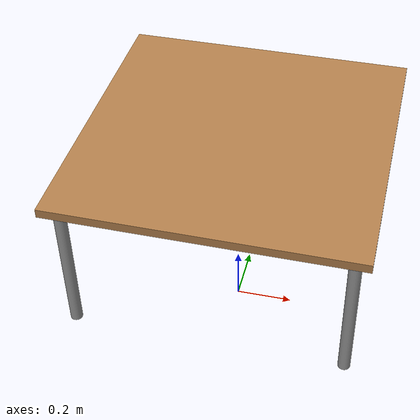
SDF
<?xml version="1.0" ?>
<sdf version="1.5">
  <model name="custom_table">
    <static>true</static>
    <link name="link">
      <collision name="surface">
        <pose>0 0 0.75 0 0 0</pose>
        <geometry>
          <box>
            <size>1.0 1.0 0.03</size>
          </box>
        </geometry>
        <surface>
          <friction>
            <ode>
              <mu>0.6</mu>
              <mu2>0.6</mu2>
            </ode>
          </friction>
        </surface>
      </collision>
      <visual name="visual1">
        <pose>0 0 0.75 0 0 0</pose>
        <geometry>
          <box>
            <size>1.0 1.0 0.03</size>
          </box>
        </geometry>
        <material>
          <script>
            <uri>file://media/materials/scripts/gazebo.material</uri>
            <name>Gazebo/Wood</name>
          </script>
        </material>
      </visual>
      <collision name="front_left_leg">
        <pose>0.45 0.45 0.5 0 0 0</pose>
        <geometry>
          <cylinder>
            <radius>0.02</radius>
            <length>0.5</length>
          </cylinder>
        </geometry>
      </collision>
      <visual name="front_left_leg">
        <pose>0.45 0.45 0.5 0 0 0</pose>
        <geometry>
          <cylinder>
            <radius>0.02</radius>
            <length>0.5</length>
          </cylinder>
        </geometry>
        <material>
          <script>
            <uri>file://media/materials/scripts/gazebo.material</uri>
            <name>Gazebo/Grey</name>
          </script>
        </material>
      </visual>
      <collision name="front_right_leg">
        <pose>0.45 -0.45 0.5 0 0 0</pose>
        <geometry>
          <cylinder>
            <radius>0.02</radius>
            <length>0.5</length>
          </cylinder>
        </geometry>
      </collision>
      <visual name="front_right_leg">
        <pose>0.45 -0.45 0.5 0 0 0</pose>
        <geometry>
          <cylinder>
            <radius>0.02</radius>
            <length>0.5</length>
          </cylinder>
        </geometry>
        <material>
          <script>
            <uri>file://media/materials/scripts/gazebo.material</uri>
            <name>Gazebo/Grey</name>
          </script>
        </material>
      </visual>
      <collision name="back_right_leg">
        <pose>-0.45 -0.45 0.5 0 0 0</pose>
        <geometry>
          <cylinder>
            <radius>0.02</radius>
            <length>0.5</length>
          </cylinder>
        </geometry>
      </collision>
      <visual name="back_right_leg">
        <pose>-0.45 -0.45 0.5 0 0 0</pose>
        <geometry>
          <cylinder>
            <radius>0.02</radius>
            <length>0.5</length>
          </cylinder>
        </geometry>
        <material>
          <script>
            <uri>file://media/materials/scripts/gazebo.material</uri>
            <name>Gazebo/Grey</name>
          </script>
        </material>
      </visual>
      <collision name="back_left_leg">
        <pose>-0.45 0.45 0.5 0 0 0</pose>
        <geometry>
          <cylinder>
            <radius>0.02</radius>
            <length>0.5</length>
          </cylinder>
        </geometry>
      </collision>
      <visual name="back_left_leg">
        <pose>-0.45 0.45 0.5 0 0 0</pose>
        <geometry>
          <cylinder>
            <radius>0.02</radius>
            <length>0.5</length>
          </cylinder>
        </geometry>
        <material>
          <script>
            <uri>file://media/materials/scripts/gazebo.material</uri>
            <name>Gazebo/Grey</name>
          </script>
        </material>
      </visual>
    </link>
  </model>
</sdf>
